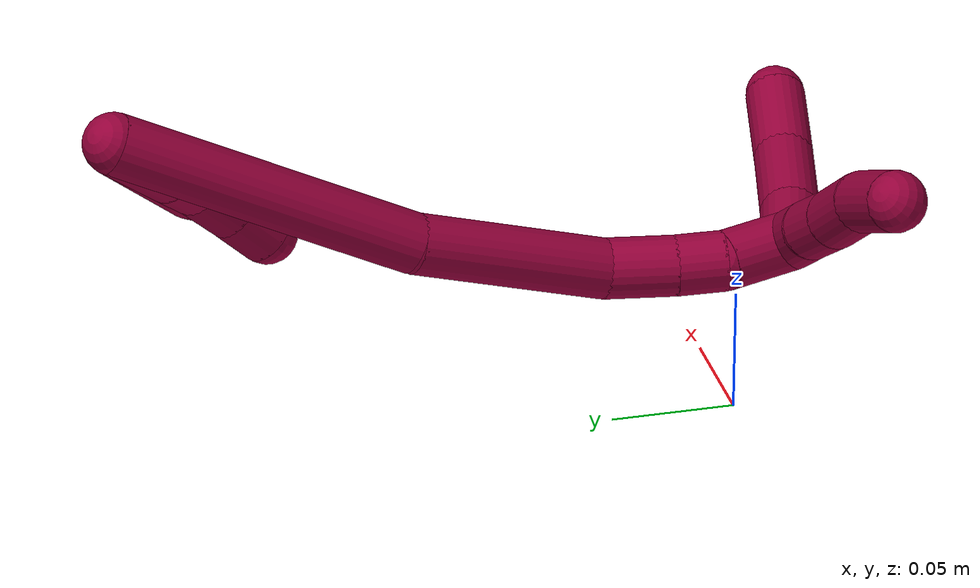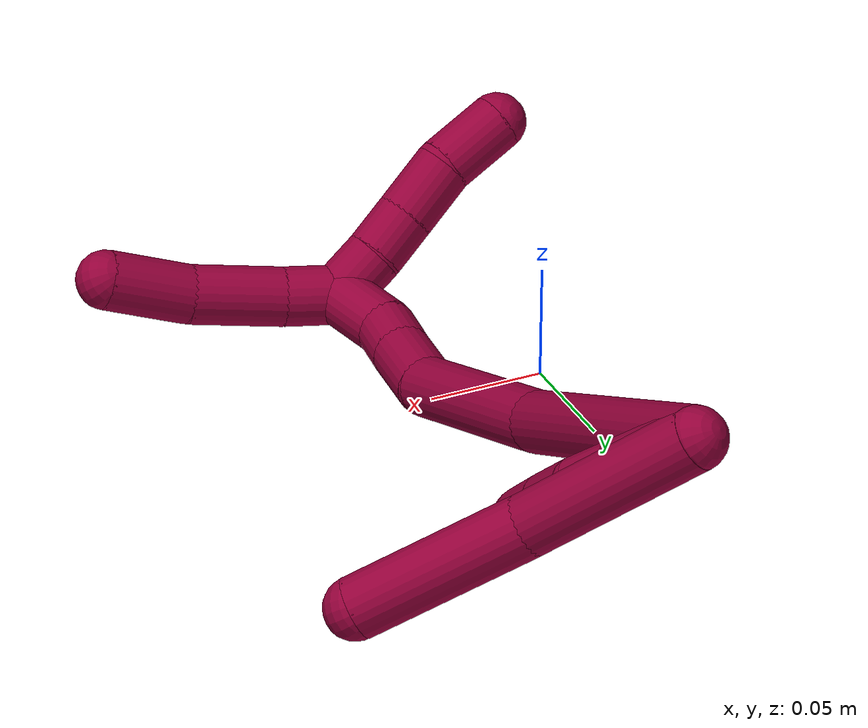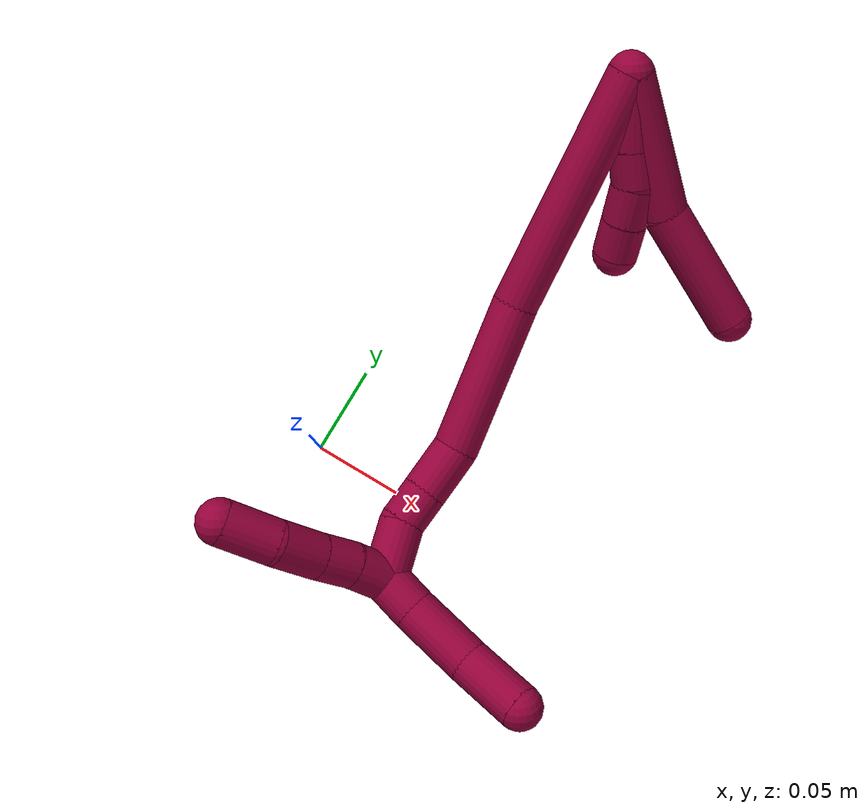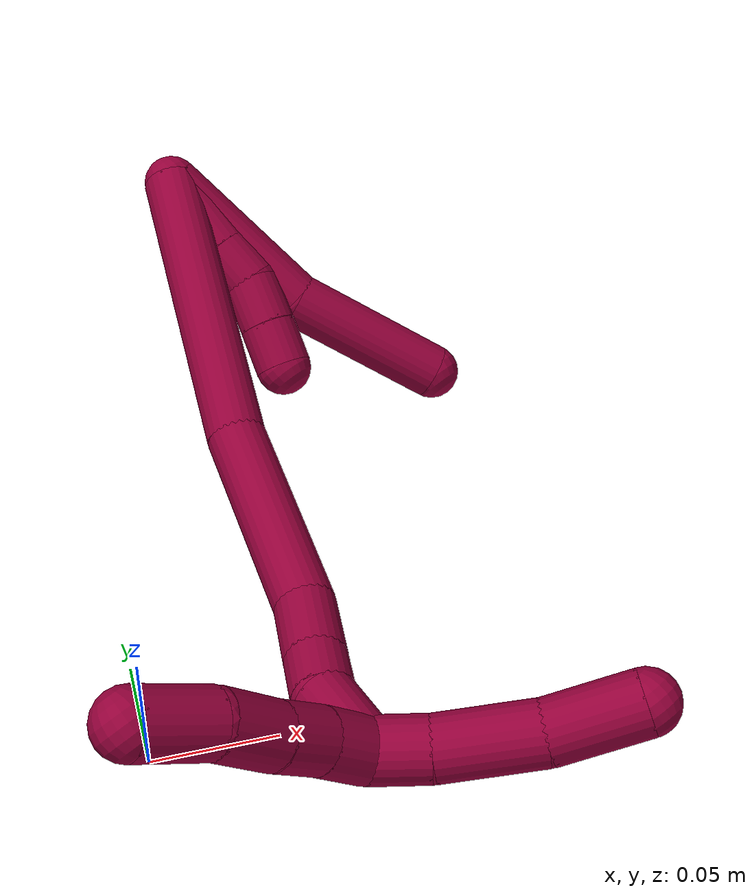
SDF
<sdf version="1.7">
 <world name="default">
  <model name="8">
   <static>0</static>
   <link name="8">
    <collision name="collision-cylinder-e_1_2_8">
     <pose>0.004337 0.008872 -0.037481 -2.90918 0.112132 -0.896332</pose>
     <geometry><cylinder><radius>0.0125</radius><length>0.077521</length></cylinder></geometry>
     <surface>
      <friction><ode><mu>1.16</mu><mu2>1.16</mu2><slip1>0</slip1><slip2>0</slip2></ode></friction>
      <contact><ode><kp>1e+06</kp><kd>1</kd><max_vel>0</max_vel><min_depth>0.001</min_depth></ode></contact>
     </surface>
    </collision>
    <visual name="visual-cylinder-e_1_2_8">
     <pose>0.004337 0.008872 -0.037481 -2.90918 0.112132 -0.896332</pose>
     <geometry><cylinder><radius>0.0125</radius><length>0.077521</length></cylinder></geometry>
     <material><ambient>0.584314 0 0.227451 1</ambient></material>
    </visual>
    <collision name="collision-cylinder-e_2_8_6">
     <pose>0.020027 0.032218 -0.106186 -2.7075 0.318631 -1.25937</pose>
     <geometry><cylinder><radius>0.0125</radius><length>0.072479</length></cylinder></geometry>
     <surface>
      <friction><ode><mu>1.16</mu><mu2>1.16</mu2><slip1>0</slip1><slip2>0</slip2></ode></friction>
      <contact><ode><kp>1e+06</kp><kd>1</kd><max_vel>0</max_vel><min_depth>0.001</min_depth></ode></contact>
     </surface>
    </collision>
    <visual name="visual-cylinder-e_2_8_6">
     <pose>0.020027 0.032218 -0.106186 -2.7075 0.318631 -1.25937</pose>
     <geometry><cylinder><radius>0.0125</radius><length>0.072479</length></cylinder></geometry>
     <material><ambient>0.584314 0 0.227451 1</ambient></material>
    </visual>
    <collision name="collision-cylinder-e_1_2_9">
     <pose>2.1e-05 0.000609 -0.018937 -3.10943 0.001112 -0.069125</pose>
     <geometry><cylinder><radius>0.0125</radius><length>0.037894</length></cylinder></geometry>
     <surface>
      <friction><ode><mu>1.16</mu><mu2>1.16</mu2><slip1>0</slip1><slip2>0</slip2></ode></friction>
      <contact><ode><kp>1e+06</kp><kd>1</kd><max_vel>0</max_vel><min_depth>0.001</min_depth></ode></contact>
     </surface>
    </collision>
    <visual name="visual-cylinder-e_1_2_9">
     <pose>2.1e-05 0.000609 -0.018937 -3.10943 0.001112 -0.069125</pose>
     <geometry><cylinder><radius>0.0125</radius><length>0.037894</length></cylinder></geometry>
     <material><ambient>0.584314 0 0.227451 1</ambient></material>
    </visual>
    <collision name="collision-cylinder-e_2_9_10">
     <pose>0.000543 0.002014 -0.047919 -3.06251 0.049703 -1.12192</pose>
     <geometry><cylinder><radius>0.0125</radius><length>0.020177</length></cylinder></geometry>
     <surface>
      <friction><ode><mu>1.16</mu><mu2>1.16</mu2><slip1>0</slip1><slip2>0</slip2></ode></friction>
      <contact><ode><kp>1e+06</kp><kd>1</kd><max_vel>0</max_vel><min_depth>0.001</min_depth></ode></contact>
     </surface>
    </collision>
    <visual name="visual-cylinder-e_2_9_10">
     <pose>0.000543 0.002014 -0.047919 -3.06251 0.049703 -1.12192</pose>
     <geometry><cylinder><radius>0.0125</radius><length>0.020177</length></cylinder></geometry>
     <material><ambient>0.584314 0 0.227451 1</ambient></material>
    </visual>
    <collision name="collision-cylinder-e_3_10_11">
     <pose>-0.001271 0.001438 -0.068483 3.01185 -0.214934 -2.05758</pose>
     <geometry><cylinder><radius>0.0125</radius><length>0.021718</length></cylinder></geometry>
     <surface>
      <friction><ode><mu>1.16</mu><mu2>1.16</mu2><slip1>0</slip1><slip2>0</slip2></ode></friction>
      <contact><ode><kp>1e+06</kp><kd>1</kd><max_vel>0</max_vel><min_depth>0.001</min_depth></ode></contact>
     </surface>
    </collision>
    <visual name="visual-cylinder-e_3_10_11">
     <pose>-0.001271 0.001438 -0.068483 3.01185 -0.214934 -2.05758</pose>
     <geometry><cylinder><radius>0.0125</radius><length>0.021718</length></cylinder></geometry>
     <material><ambient>0.584314 0 0.227451 1</ambient></material>
    </visual>
    <collision name="collision-cylinder-e_4_11_5">
     <pose>-0.005996 -0.001077 -0.088751 3.02498 -0.240635 -2.24199</pose>
     <geometry><cylinder><radius>0.0125</radius><length>0.020211</length></cylinder></geometry>
     <surface>
      <friction><ode><mu>1.16</mu><mu2>1.16</mu2><slip1>0</slip1><slip2>0</slip2></ode></friction>
      <contact><ode><kp>1e+06</kp><kd>1</kd><max_vel>0</max_vel><min_depth>0.001</min_depth></ode></contact>
     </surface>
    </collision>
    <visual name="visual-cylinder-e_4_11_5">
     <pose>-0.005996 -0.001077 -0.088751 3.02498 -0.240635 -2.24199</pose>
     <geometry><cylinder><radius>0.0125</radius><length>0.020211</length></cylinder></geometry>
     <material><ambient>0.584314 0 0.227451 1</ambient></material>
    </visual>
    <collision name="collision-cylinder-e_1_2_12">
     <pose>-0.01047 -0.03006 -0.058763 2.66875 -0.157314 -0.632352</pose>
     <geometry><cylinder><radius>0.0125</radius><length>0.133662</length></cylinder></geometry>
     <surface>
      <friction><ode><mu>1.16</mu><mu2>1.16</mu2><slip1>0</slip1><slip2>0</slip2></ode></friction>
      <contact><ode><kp>1e+06</kp><kd>1</kd><max_vel>0</max_vel><min_depth>0.001</min_depth></ode></contact>
     </surface>
    </collision>
    <visual name="visual-cylinder-e_1_2_12">
     <pose>-0.01047 -0.03006 -0.058763 2.66875 -0.157314 -0.632352</pose>
     <geometry><cylinder><radius>0.0125</radius><length>0.133662</length></cylinder></geometry>
     <material><ambient>0.584314 0 0.227451 1</ambient></material>
    </visual>
    <collision name="collision-cylinder-e_2_12_13">
     <pose>-0.0205 -0.08132 -0.154538 2.62143 0.010331 0.038817</pose>
     <geometry><cylinder><radius>0.0125</radius><length>0.08531</length></cylinder></geometry>
     <surface>
      <friction><ode><mu>1.16</mu><mu2>1.16</mu2><slip1>0</slip1><slip2>0</slip2></ode></friction>
      <contact><ode><kp>1e+06</kp><kd>1</kd><max_vel>0</max_vel><min_depth>0.001</min_depth></ode></contact>
     </surface>
    </collision>
    <visual name="visual-cylinder-e_2_12_13">
     <pose>-0.0205 -0.08132 -0.154538 2.62143 0.010331 0.038817</pose>
     <geometry><cylinder><radius>0.0125</radius><length>0.08531</length></cylinder></geometry>
     <material><ambient>0.584314 0 0.227451 1</ambient></material>
    </visual>
    <collision name="collision-cylinder-e_3_13_14">
     <pose>-0.019285 -0.113655 -0.201077 2.27848 0.052768 0.114489</pose>
     <geometry><cylinder><radius>0.0125</radius><length>0.029352</length></cylinder></geometry>
     <surface>
      <friction><ode><mu>1.16</mu><mu2>1.16</mu2><slip1>0</slip1><slip2>0</slip2></ode></friction>
      <contact><ode><kp>1e+06</kp><kd>1</kd><max_vel>0</max_vel><min_depth>0.001</min_depth></ode></contact>
     </surface>
    </collision>
    <visual name="visual-cylinder-e_3_13_14">
     <pose>-0.019285 -0.113655 -0.201077 2.27848 0.052768 0.114489</pose>
     <geometry><cylinder><radius>0.0125</radius><length>0.029352</length></cylinder></geometry>
     <material><ambient>0.584314 0 0.227451 1</ambient></material>
    </visual>
    <collision name="collision-cylinder-e_4_14_15">
     <pose>-0.017557 -0.132806 -0.216783 2.2276 0.093966 0.190662</pose>
     <geometry><cylinder><radius>0.0125</radius><length>0.020329</length></cylinder></geometry>
     <surface>
      <friction><ode><mu>1.16</mu><mu2>1.16</mu2><slip1>0</slip1><slip2>0</slip2></ode></friction>
      <contact><ode><kp>1e+06</kp><kd>1</kd><max_vel>0</max_vel><min_depth>0.001</min_depth></ode></contact>
     </surface>
    </collision>
    <visual name="visual-cylinder-e_4_14_15">
     <pose>-0.017557 -0.132806 -0.216783 2.2276 0.093966 0.190662</pose>
     <geometry><cylinder><radius>0.0125</radius><length>0.020329</length></cylinder></geometry>
     <material><ambient>0.584314 0 0.227451 1</ambient></material>
    </visual>
    <collision name="collision-cylinder-e_5_15_1">
     <pose>-0.01103 -0.150123 -0.234278 2.45356 0.36356 0.948078</pose>
     <geometry><cylinder><radius>0.0125</radius><length>0.031347</length></cylinder></geometry>
     <surface>
      <friction><ode><mu>1.16</mu><mu2>1.16</mu2><slip1>0</slip1><slip2>0</slip2></ode></friction>
      <contact><ode><kp>1e+06</kp><kd>1</kd><max_vel>0</max_vel><min_depth>0.001</min_depth></ode></contact>
     </surface>
    </collision>
    <visual name="visual-cylinder-e_5_15_1">
     <pose>-0.01103 -0.150123 -0.234278 2.45356 0.36356 0.948078</pose>
     <geometry><cylinder><radius>0.0125</radius><length>0.031347</length></cylinder></geometry>
     <material><ambient>0.584314 0 0.227451 1</ambient></material>
    </visual>
    <collision name="collision-cylinder-e_1_1_16">
     <pose>-0.007276 -0.167966 -0.238711 0.892469 -0.164423 -0.0788</pose>
     <geometry><cylinder><radius>0.0125</radius><length>0.02224</length></cylinder></geometry>
     <surface>
      <friction><ode><mu>1.16</mu><mu2>1.16</mu2><slip1>0</slip1><slip2>0</slip2></ode></friction>
      <contact><ode><kp>1e+06</kp><kd>1</kd><max_vel>0</max_vel><min_depth>0.001</min_depth></ode></contact>
     </surface>
    </collision>
    <visual name="visual-cylinder-e_1_1_16">
     <pose>-0.007276 -0.167966 -0.238711 0.892469 -0.164423 -0.0788</pose>
     <geometry><cylinder><radius>0.0125</radius><length>0.02224</length></cylinder></geometry>
     <material><ambient>0.584314 0 0.227451 1</ambient></material>
    </visual>
    <collision name="collision-cylinder-e_2_16_17">
     <pose>-0.010537 -0.185256 -0.226286 1.00618 -0.138203 -0.07614</pose>
     <geometry><cylinder><radius>0.0125</radius><length>0.020911</length></cylinder></geometry>
     <surface>
      <friction><ode><mu>1.16</mu><mu2>1.16</mu2><slip1>0</slip1><slip2>0</slip2></ode></friction>
      <contact><ode><kp>1e+06</kp><kd>1</kd><max_vel>0</max_vel><min_depth>0.001</min_depth></ode></contact>
     </surface>
    </collision>
    <visual name="visual-cylinder-e_2_16_17">
     <pose>-0.010537 -0.185256 -0.226286 1.00618 -0.138203 -0.07614</pose>
     <geometry><cylinder><radius>0.0125</radius><length>0.020911</length></cylinder></geometry>
     <material><ambient>0.584314 0 0.227451 1</ambient></material>
    </visual>
    <collision name="collision-cylinder-e_3_17_18">
     <pose>-0.013293 -0.204759 -0.212927 0.942209 -0.098633 -0.05027</pose>
     <geometry><cylinder><radius>0.0125</radius><length>0.026722</length></cylinder></geometry>
     <surface>
      <friction><ode><mu>1.16</mu><mu2>1.16</mu2><slip1>0</slip1><slip2>0</slip2></ode></friction>
      <contact><ode><kp>1e+06</kp><kd>1</kd><max_vel>0</max_vel><min_depth>0.001</min_depth></ode></contact>
     </surface>
    </collision>
    <visual name="visual-cylinder-e_3_17_18">
     <pose>-0.013293 -0.204759 -0.212927 0.942209 -0.098633 -0.05027</pose>
     <geometry><cylinder><radius>0.0125</radius><length>0.026722</length></cylinder></geometry>
     <material><ambient>0.584314 0 0.227451 1</ambient></material>
    </visual>
    <collision name="collision-cylinder-e_4_18_4">
     <pose>-0.019819 -0.227216 -0.197183 0.975437 -0.353172 -0.188753</pose>
     <geometry><cylinder><radius>0.0125</radius><length>0.030128</length></cylinder></geometry>
     <surface>
      <friction><ode><mu>1.16</mu><mu2>1.16</mu2><slip1>0</slip1><slip2>0</slip2></ode></friction>
      <contact><ode><kp>1e+06</kp><kd>1</kd><max_vel>0</max_vel><min_depth>0.001</min_depth></ode></contact>
     </surface>
    </collision>
    <visual name="visual-cylinder-e_4_18_4">
     <pose>-0.019819 -0.227216 -0.197183 0.975437 -0.353172 -0.188753</pose>
     <geometry><cylinder><radius>0.0125</radius><length>0.030128</length></cylinder></geometry>
     <material><ambient>0.584314 0 0.227451 1</ambient></material>
    </visual>
    <collision name="collision-cylinder-e_1_1_19">
     <pose>0.003447 -0.155995 -0.252172 -2.66097 0.87616 -2.17765</pose>
     <geometry><cylinder><radius>0.0125</radius><length>0.023177</length></cylinder></geometry>
     <surface>
      <friction><ode><mu>1.16</mu><mu2>1.16</mu2><slip1>0</slip1><slip2>0</slip2></ode></friction>
      <contact><ode><kp>1e+06</kp><kd>1</kd><max_vel>0</max_vel><min_depth>0.001</min_depth></ode></contact>
     </surface>
    </collision>
    <visual name="visual-cylinder-e_1_1_19">
     <pose>0.003447 -0.155995 -0.252172 -2.66097 0.87616 -2.17765</pose>
     <geometry><cylinder><radius>0.0125</radius><length>0.023177</length></cylinder></geometry>
     <material><ambient>0.584314 0 0.227451 1</ambient></material>
    </visual>
    <collision name="collision-cylinder-e_2_19_20">
     <pose>0.029059 -0.146603 -0.268114 -2.57459 0.98434 -2.1461</pose>
     <geometry><cylinder><radius>0.0125</radius><length>0.040121</length></cylinder></geometry>
     <surface>
      <friction><ode><mu>1.16</mu><mu2>1.16</mu2><slip1>0</slip1><slip2>0</slip2></ode></friction>
      <contact><ode><kp>1e+06</kp><kd>1</kd><max_vel>0</max_vel><min_depth>0.001</min_depth></ode></contact>
     </surface>
    </collision>
    <visual name="visual-cylinder-e_2_19_20">
     <pose>0.029059 -0.146603 -0.268114 -2.57459 0.98434 -2.1461</pose>
     <geometry><cylinder><radius>0.0125</radius><length>0.040121</length></cylinder></geometry>
     <material><ambient>0.584314 0 0.227451 1</ambient></material>
    </visual>
    <collision name="collision-cylinder-e_3_20_3">
     <pose>0.062634 -0.13629 -0.283254 -2.49602 1.16579 -2.20262</pose>
     <geometry><cylinder><radius>0.0125</radius><length>0.036703</length></cylinder></geometry>
     <surface>
      <friction><ode><mu>1.16</mu><mu2>1.16</mu2><slip1>0</slip1><slip2>0</slip2></ode></friction>
      <contact><ode><kp>1e+06</kp><kd>1</kd><max_vel>0</max_vel><min_depth>0.001</min_depth></ode></contact>
     </surface>
    </collision>
    <visual name="visual-cylinder-e_3_20_3">
     <pose>0.062634 -0.13629 -0.283254 -2.49602 1.16579 -2.20262</pose>
     <geometry><cylinder><radius>0.0125</radius><length>0.036703</length></cylinder></geometry>
     <material><ambient>0.584314 0 0.227451 1</ambient></material>
    </visual>
    <collision name="collision-sphere-3">
     <pose>0.0795 -0.13194 -0.28903 0 -0 0</pose>
     <geometry><sphere><radius>0.0125</radius></sphere></geometry>
     <surface>
      <friction><ode><mu>1.16</mu><mu2>1.16</mu2><slip1>0</slip1><slip2>0</slip2></ode></friction>
      <contact><ode><kp>1e+06</kp><kd>1</kd><max_vel>0</max_vel><min_depth>0.001</min_depth></ode></contact>
     </surface>
    </collision>
    <visual name="visual-sphere-3">
     <pose>0.0795 -0.13194 -0.28903 0 -0 0</pose>
     <geometry><sphere><radius>0.0125</radius></sphere></geometry>
     <material><ambient>0.584314 0 0.227451 1</ambient></material>
    </visual>
    <collision name="collision-sphere-20">
     <pose>0.045767 -0.14064 -0.277478 0 -0 0</pose>
     <geometry><sphere><radius>0.0125</radius></sphere></geometry>
     <surface>
      <friction><ode><mu>1.16</mu><mu2>1.16</mu2><slip1>0</slip1><slip2>0</slip2></ode></friction>
      <contact><ode><kp>1e+06</kp><kd>1</kd><max_vel>0</max_vel><min_depth>0.001</min_depth></ode></contact>
     </surface>
    </collision>
    <visual name="visual-sphere-20">
     <pose>0.045767 -0.14064 -0.277478 0 -0 0</pose>
     <geometry><sphere><radius>0.0125</radius></sphere></geometry>
     <material><ambient>0.584314 0 0.227451 1</ambient></material>
    </visual>
    <collision name="collision-sphere-19">
     <pose>0.01235 -0.152566 -0.25875 0 -0 0</pose>
     <geometry><sphere><radius>0.0125</radius></sphere></geometry>
     <surface>
      <friction><ode><mu>1.16</mu><mu2>1.16</mu2><slip1>0</slip1><slip2>0</slip2></ode></friction>
      <contact><ode><kp>1e+06</kp><kd>1</kd><max_vel>0</max_vel><min_depth>0.001</min_depth></ode></contact>
     </surface>
    </collision>
    <visual name="visual-sphere-19">
     <pose>0.01235 -0.152566 -0.25875 0 -0 0</pose>
     <geometry><sphere><radius>0.0125</radius></sphere></geometry>
     <material><ambient>0.584314 0 0.227451 1</ambient></material>
    </visual>
    <collision name="collision-sphere-11">
     <pose>-0.003588 6.5e-05 -0.079003 0 -0 0</pose>
     <geometry><sphere><radius>0.0125</radius></sphere></geometry>
     <surface>
      <friction><ode><mu>1.16</mu><mu2>1.16</mu2><slip1>0</slip1><slip2>0</slip2></ode></friction>
      <contact><ode><kp>1e+06</kp><kd>1</kd><max_vel>0</max_vel><min_depth>0.001</min_depth></ode></contact>
     </surface>
    </collision>
    <visual name="visual-sphere-11">
     <pose>-0.003588 6.5e-05 -0.079003 0 -0 0</pose>
     <geometry><sphere><radius>0.0125</radius></sphere></geometry>
     <material><ambient>0.584314 0 0.227451 1</ambient></material>
    </visual>
    <collision name="collision-sphere-10">
     <pose>0.001045 0.00281 -0.057964 0 -0 0</pose>
     <geometry><sphere><radius>0.0125</radius></sphere></geometry>
     <surface>
      <friction><ode><mu>1.16</mu><mu2>1.16</mu2><slip1>0</slip1><slip2>0</slip2></ode></friction>
      <contact><ode><kp>1e+06</kp><kd>1</kd><max_vel>0</max_vel><min_depth>0.001</min_depth></ode></contact>
     </surface>
    </collision>
    <visual name="visual-sphere-10">
     <pose>0.001045 0.00281 -0.057964 0 -0 0</pose>
     <geometry><sphere><radius>0.0125</radius></sphere></geometry>
     <material><ambient>0.584314 0 0.227451 1</ambient></material>
    </visual>
    <collision name="collision-sphere-6">
     <pose>0.03138 0.046692 -0.13741 0 -0 0</pose>
     <geometry><sphere><radius>0.0125</radius></sphere></geometry>
     <surface>
      <friction><ode><mu>1.16</mu><mu2>1.16</mu2><slip1>0</slip1><slip2>0</slip2></ode></friction>
      <contact><ode><kp>1e+06</kp><kd>1</kd><max_vel>0</max_vel><min_depth>0.001</min_depth></ode></contact>
     </surface>
    </collision>
    <visual name="visual-sphere-6">
     <pose>0.03138 0.046692 -0.13741 0 -0 0</pose>
     <geometry><sphere><radius>0.0125</radius></sphere></geometry>
     <material><ambient>0.584314 0 0.227451 1</ambient></material>
    </visual>
    <collision name="collision-sphere-9">
     <pose>4.2e-05 0.001218 -0.037875 0 -0 0</pose>
     <geometry><sphere><radius>0.0125</radius></sphere></geometry>
     <surface>
      <friction><ode><mu>1.16</mu><mu2>1.16</mu2><slip1>0</slip1><slip2>0</slip2></ode></friction>
      <contact><ode><kp>1e+06</kp><kd>1</kd><max_vel>0</max_vel><min_depth>0.001</min_depth></ode></contact>
     </surface>
    </collision>
    <visual name="visual-sphere-9">
     <pose>4.2e-05 0.001218 -0.037875 0 -0 0</pose>
     <geometry><sphere><radius>0.0125</radius></sphere></geometry>
     <material><ambient>0.584314 0 0.227451 1</ambient></material>
    </visual>
    <collision name="collision-sphere-2">
     <geometry><sphere><radius>0.0125</radius></sphere></geometry>
     <surface>
      <friction><ode><mu>1.16</mu><mu2>1.16</mu2><slip1>0</slip1><slip2>0</slip2></ode></friction>
      <contact><ode><kp>1e+06</kp><kd>1</kd><max_vel>0</max_vel><min_depth>0.001</min_depth></ode></contact>
     </surface>
    </collision>
    <visual name="visual-sphere-2">
     <geometry><sphere><radius>0.0125</radius></sphere></geometry>
     <material><ambient>0.584314 0 0.227451 1</ambient></material>
    </visual>
    <collision name="collision-sphere-8">
     <pose>0.008674 0.017743 -0.074963 0 -0 0</pose>
     <geometry><sphere><radius>0.0125</radius></sphere></geometry>
     <surface>
      <friction><ode><mu>1.16</mu><mu2>1.16</mu2><slip1>0</slip1><slip2>0</slip2></ode></friction>
      <contact><ode><kp>1e+06</kp><kd>1</kd><max_vel>0</max_vel><min_depth>0.001</min_depth></ode></contact>
     </surface>
    </collision>
    <visual name="visual-sphere-8">
     <pose>0.008674 0.017743 -0.074963 0 -0 0</pose>
     <geometry><sphere><radius>0.0125</radius></sphere></geometry>
     <material><ambient>0.584314 0 0.227451 1</ambient></material>
    </visual>
    <collision name="collision-sphere-5">
     <pose>-0.008404 -0.002219 -0.098499 0 -0 0</pose>
     <geometry><sphere><radius>0.0125</radius></sphere></geometry>
     <surface>
      <friction><ode><mu>1.16</mu><mu2>1.16</mu2><slip1>0</slip1><slip2>0</slip2></ode></friction>
      <contact><ode><kp>1e+06</kp><kd>1</kd><max_vel>0</max_vel><min_depth>0.001</min_depth></ode></contact>
     </surface>
    </collision>
    <visual name="visual-sphere-5">
     <pose>-0.008404 -0.002219 -0.098499 0 -0 0</pose>
     <geometry><sphere><radius>0.0125</radius></sphere></geometry>
     <material><ambient>0.584314 0 0.227451 1</ambient></material>
    </visual>
    <collision name="collision-sphere-12">
     <pose>-0.02094 -0.060121 -0.117526 0 -0 0</pose>
     <geometry><sphere><radius>0.0125</radius></sphere></geometry>
     <surface>
      <friction><ode><mu>1.16</mu><mu2>1.16</mu2><slip1>0</slip1><slip2>0</slip2></ode></friction>
      <contact><ode><kp>1e+06</kp><kd>1</kd><max_vel>0</max_vel><min_depth>0.001</min_depth></ode></contact>
     </surface>
    </collision>
    <visual name="visual-sphere-12">
     <pose>-0.02094 -0.060121 -0.117526 0 -0 0</pose>
     <geometry><sphere><radius>0.0125</radius></sphere></geometry>
     <material><ambient>0.584314 0 0.227451 1</ambient></material>
    </visual>
    <collision name="collision-sphere-13">
     <pose>-0.020059 -0.102519 -0.19155 0 -0 0</pose>
     <geometry><sphere><radius>0.0125</radius></sphere></geometry>
     <surface>
      <friction><ode><mu>1.16</mu><mu2>1.16</mu2><slip1>0</slip1><slip2>0</slip2></ode></friction>
      <contact><ode><kp>1e+06</kp><kd>1</kd><max_vel>0</max_vel><min_depth>0.001</min_depth></ode></contact>
     </surface>
    </collision>
    <visual name="visual-sphere-13">
     <pose>-0.020059 -0.102519 -0.19155 0 -0 0</pose>
     <geometry><sphere><radius>0.0125</radius></sphere></geometry>
     <material><ambient>0.584314 0 0.227451 1</ambient></material>
    </visual>
    <collision name="collision-sphere-14">
     <pose>-0.018511 -0.124791 -0.210604 0 -0 0</pose>
     <geometry><sphere><radius>0.0125</radius></sphere></geometry>
     <surface>
      <friction><ode><mu>1.16</mu><mu2>1.16</mu2><slip1>0</slip1><slip2>0</slip2></ode></friction>
      <contact><ode><kp>1e+06</kp><kd>1</kd><max_vel>0</max_vel><min_depth>0.001</min_depth></ode></contact>
     </surface>
    </collision>
    <visual name="visual-sphere-14">
     <pose>-0.018511 -0.124791 -0.210604 0 -0 0</pose>
     <geometry><sphere><radius>0.0125</radius></sphere></geometry>
     <material><ambient>0.584314 0 0.227451 1</ambient></material>
    </visual>
    <collision name="collision-sphere-15">
     <pose>-0.016603 -0.14082 -0.222962 0 -0 0</pose>
     <geometry><sphere><radius>0.0125</radius></sphere></geometry>
     <surface>
      <friction><ode><mu>1.16</mu><mu2>1.16</mu2><slip1>0</slip1><slip2>0</slip2></ode></friction>
      <contact><ode><kp>1e+06</kp><kd>1</kd><max_vel>0</max_vel><min_depth>0.001</min_depth></ode></contact>
     </surface>
    </collision>
    <visual name="visual-sphere-15">
     <pose>-0.016603 -0.14082 -0.222962 0 -0 0</pose>
     <geometry><sphere><radius>0.0125</radius></sphere></geometry>
     <material><ambient>0.584314 0 0.227451 1</ambient></material>
    </visual>
    <collision name="collision-sphere-1">
     <pose>-0.005456 -0.159425 -0.245595 0 -0 0</pose>
     <geometry><sphere><radius>0.0125</radius></sphere></geometry>
     <surface>
      <friction><ode><mu>1.16</mu><mu2>1.16</mu2><slip1>0</slip1><slip2>0</slip2></ode></friction>
      <contact><ode><kp>1e+06</kp><kd>1</kd><max_vel>0</max_vel><min_depth>0.001</min_depth></ode></contact>
     </surface>
    </collision>
    <visual name="visual-sphere-1">
     <pose>-0.005456 -0.159425 -0.245595 0 -0 0</pose>
     <geometry><sphere><radius>0.0125</radius></sphere></geometry>
     <material><ambient>0.584314 0 0.227451 1</ambient></material>
    </visual>
    <collision name="collision-sphere-18">
     <pose>-0.014609 -0.215514 -0.205109 0 -0 0</pose>
     <geometry><sphere><radius>0.0125</radius></sphere></geometry>
     <surface>
      <friction><ode><mu>1.16</mu><mu2>1.16</mu2><slip1>0</slip1><slip2>0</slip2></ode></friction>
      <contact><ode><kp>1e+06</kp><kd>1</kd><max_vel>0</max_vel><min_depth>0.001</min_depth></ode></contact>
     </surface>
    </collision>
    <visual name="visual-sphere-18">
     <pose>-0.014609 -0.215514 -0.205109 0 -0 0</pose>
     <geometry><sphere><radius>0.0125</radius></sphere></geometry>
     <material><ambient>0.584314 0 0.227451 1</ambient></material>
    </visual>
    <collision name="collision-sphere-16">
     <pose>-0.009097 -0.176508 -0.231828 0 -0 0</pose>
     <geometry><sphere><radius>0.0125</radius></sphere></geometry>
     <surface>
      <friction><ode><mu>1.16</mu><mu2>1.16</mu2><slip1>0</slip1><slip2>0</slip2></ode></friction>
      <contact><ode><kp>1e+06</kp><kd>1</kd><max_vel>0</max_vel><min_depth>0.001</min_depth></ode></contact>
     </surface>
    </collision>
    <visual name="visual-sphere-16">
     <pose>-0.009097 -0.176508 -0.231828 0 -0 0</pose>
     <geometry><sphere><radius>0.0125</radius></sphere></geometry>
     <material><ambient>0.584314 0 0.227451 1</ambient></material>
    </visual>
    <collision name="collision-sphere-17">
     <pose>-0.011977 -0.194004 -0.220745 0 -0 0</pose>
     <geometry><sphere><radius>0.0125</radius></sphere></geometry>
     <surface>
      <friction><ode><mu>1.16</mu><mu2>1.16</mu2><slip1>0</slip1><slip2>0</slip2></ode></friction>
      <contact><ode><kp>1e+06</kp><kd>1</kd><max_vel>0</max_vel><min_depth>0.001</min_depth></ode></contact>
     </surface>
    </collision>
    <visual name="visual-sphere-17">
     <pose>-0.011977 -0.194004 -0.220745 0 -0 0</pose>
     <geometry><sphere><radius>0.0125</radius></sphere></geometry>
     <material><ambient>0.584314 0 0.227451 1</ambient></material>
    </visual>
    <collision name="collision-sphere-4">
     <pose>-0.025029 -0.238918 -0.189256 0 -0 0</pose>
     <geometry><sphere><radius>0.0125</radius></sphere></geometry>
     <surface>
      <friction><ode><mu>1.16</mu><mu2>1.16</mu2><slip1>0</slip1><slip2>0</slip2></ode></friction>
      <contact><ode><kp>1e+06</kp><kd>1</kd><max_vel>0</max_vel><min_depth>0.001</min_depth></ode></contact>
     </surface>
    </collision>
    <visual name="visual-sphere-4">
     <pose>-0.025029 -0.238918 -0.189256 0 -0 0</pose>
     <geometry><sphere><radius>0.0125</radius></sphere></geometry>
     <material><ambient>0.584314 0 0.227451 1</ambient></material>
    </visual>
    <inertial>
     <pose>-0.000742 -0.070703 -0.137236 0 -0 0</pose>
     <mass>0.75</mass>
     <inertia>
      <ixx>8.8e-05</ixx>
      <ixy>0</ixy>
      <ixz>0</ixz>
      <iyy>-0.000408</iyy>
      <iyz>0</iyz>
      <izz>7.3e-05</izz>
     </inertia>
    </inertial>
   </link>
   <pose>0.055711 0.235902 0.116508 -0.615539 -0.735688 -0.187171</pose>
  </model>
 </world>
</sdf>
